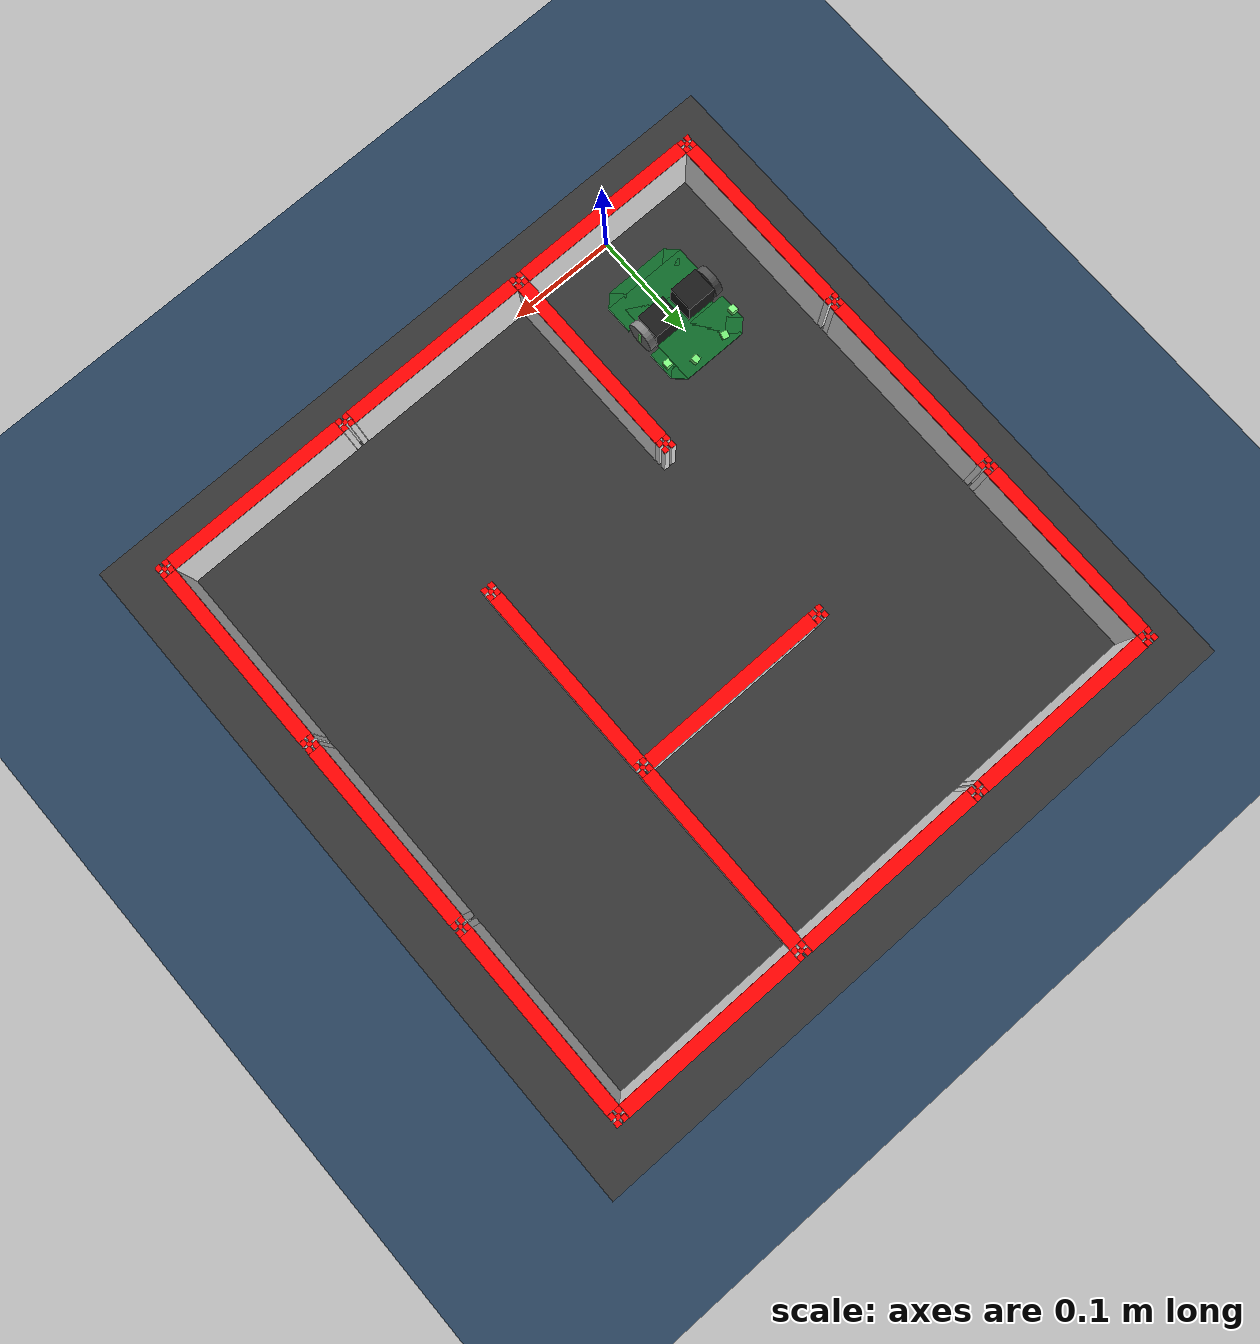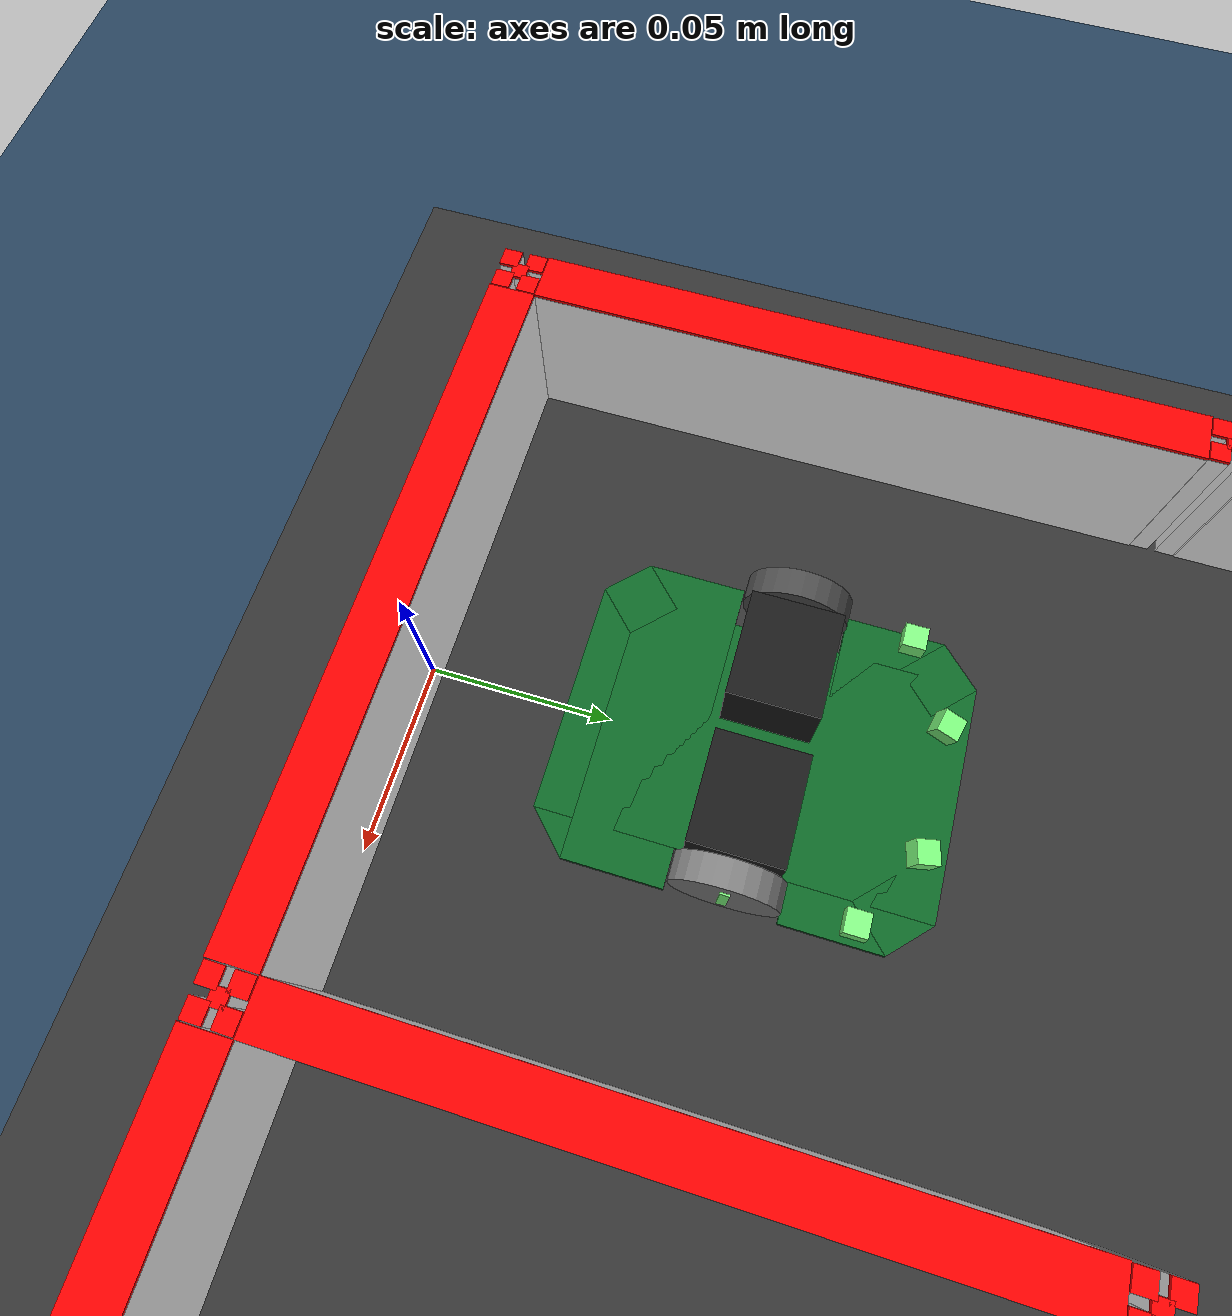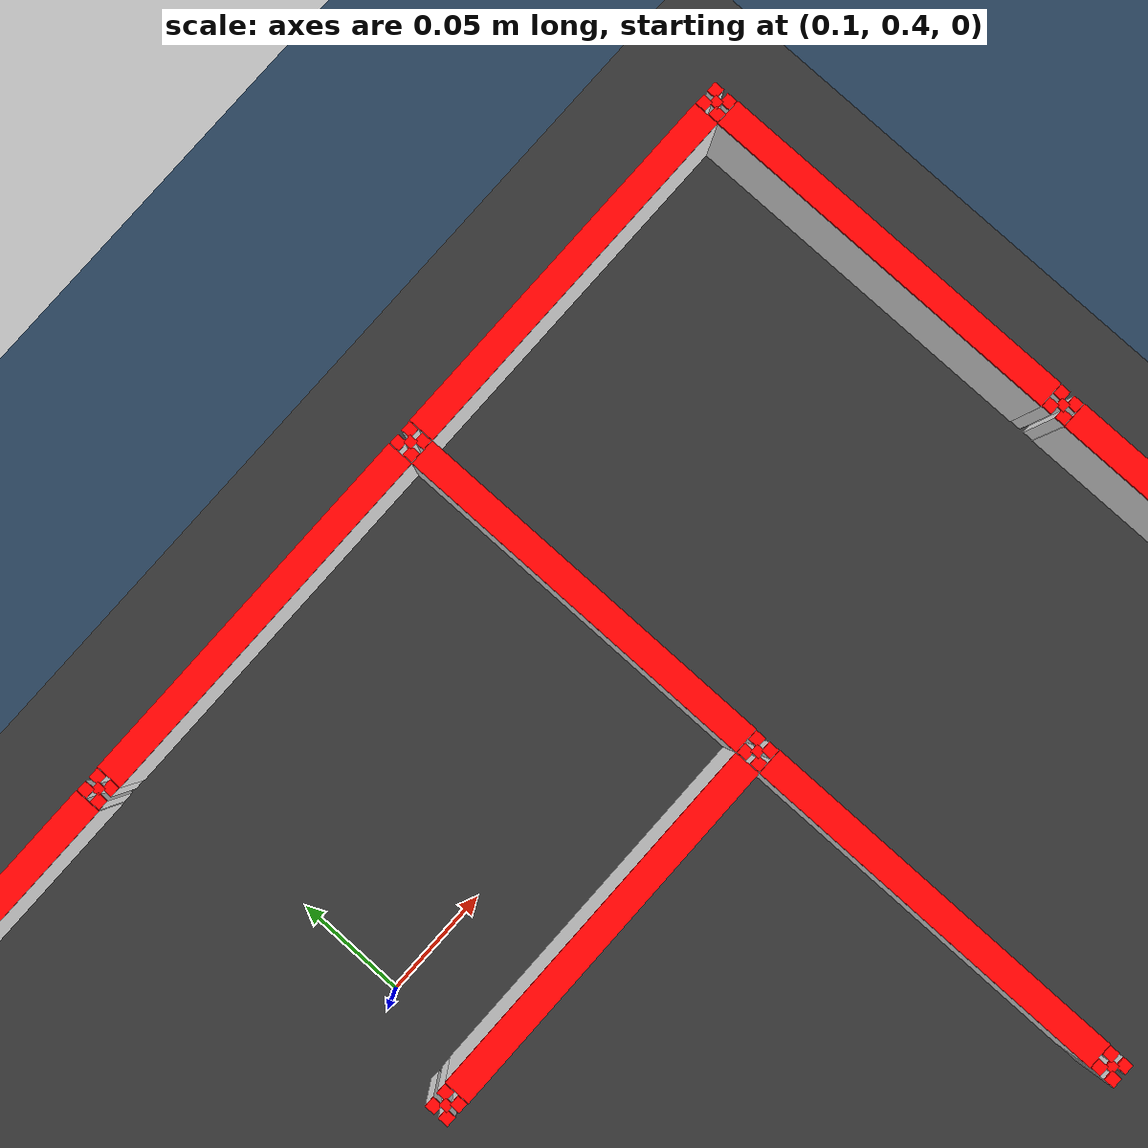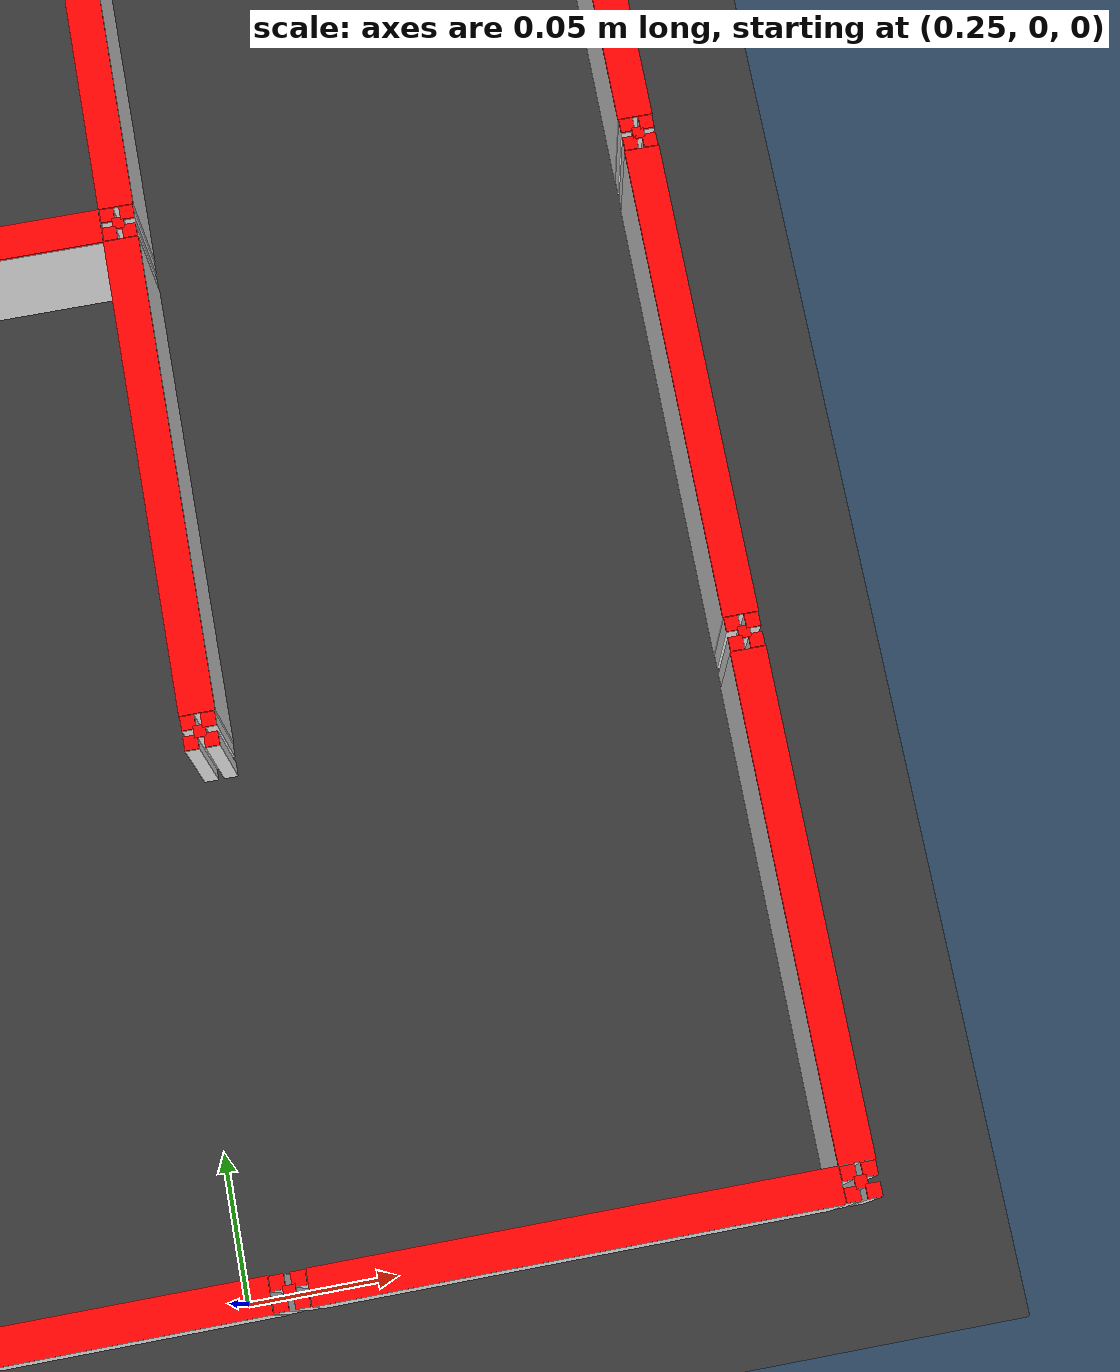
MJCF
<mujoco>
<compiler angle="degree" coordinate="local" inertiafromgeom="true" />
    <option integrator="RK4" timestep="0.001" />
    <asset>
        <texture type="skybox" builtin="gradient" rgb1="0.3 0.5 0.7" rgb2="0 0 0" width="512" height="3072"/>
        <texture type="2d" name="groundplane" builtin="checker" mark="edge" rgb1="0.2 0.3 0.4" rgb2="0.1 0.2 0.3" markrgb="0.8 0.8 0.8" width="300" height="300"/>
        <material name="groundplane" texture="groundplane" texuniform="true" texrepeat="5 5" reflectance="0.2"/>
    </asset>

    <worldbody>
        <light diffuse=".5 .5 .5" pos="0 0 10" dir="0 0 -1"/>
        <geom type="plane" size="0.7 0.7 .01" material="groundplane"/>

        <body pos="0 0.09 0.012" euler="0 0 90">
            <freejoint />
            <body name="torso">
                <geom name="mein_body1" type="box" friction="0.0 0.0 0.0" size="0.05 0.03 0.0008" rgba="0.05 0.4 0.15 1" pos="0 0 0.002" mass="4.65e-3"/>
                <geom name="mein_body_chip1" type="box" friction="0.0 0.0 0.0" size="0.00707 0.00707 0.0008" rgba="0.05 0.4 0.15 1" pos="0.04 0.03 0.002" euler="0 0 45" mass="4.65e-3"/>
                <geom name="mein_body_chip2" type="box" friction="0.0 0.0 0.0" size="0.00707 0.00707 0.0008" rgba="0.05 0.4 0.15 1" pos="0.04 -0.03 0.002" euler="0 0 45" mass="4.65e-3"/>
                <geom name="mein_body_chip3" type="box" friction="0.0 0.0 0.0" size="0.00707 0.00707 0.0008" rgba="0.05 0.4 0.15 1" pos="-0.04 0.03 0.002" euler="0 0 45" mass="4.65e-3"/>
                <geom name="mein_body_chip4" type="box" friction="0.0 0.0 0.0" size="0.00707 0.00707 0.0008" rgba="0.05 0.4 0.15 1" pos="-0.04 -0.03 0.002" euler="0 0 45" mass="4.65e-3"/>
                <geom name="mein_body4" type="box" friction="0.0 0.0 0.0" size="0.013 0.04 0.0008"  rgba="0.05 0.4 0.15 1" pos="-0.027 0 0.002" mass="4.65e-3"/>
                <geom name="mein_body5" type="box" friction="0.0 0.0 0.0" size="0.013 0.04 0.0008"  rgba="0.05 0.4 0.15 1" pos="0.027 0 0.002" mass="4.65e-3"/>
                <!--接触判定領域（この中に入ってるgeomが接触すると，センサ値としてその値を取得できる）-->
                <site name = "hit_box1" type = "box" size = "0.02 0.043 0.0008" pos="0.032 0 0.01" rgba="1 1 1 0.01"/>-->
                <site name = "hit_box2" type = "box" size = "0.02 0.043 0.0008" pos="-0.032 0 0.01" rgba="1 1 1 0.01"/>-->

            </body>

            <site name="sensor_left_front" type="box" size="0.003 0.003 0.003" pos="0.031 0.036 0.01" zaxis="1 0 0.01" rgba=".5 1 .5 1"/>
              <!-- zaxisの３つめ　0.1でちょい上向き -->
            <site name="sensor_left_side" type="box" size="0.003 0.003 0.003" pos="0.043 0.016 0.01" zaxis="0.25 1 0" rgba=".5 1 .5 1"/>
            <site name="sensor_right_front" type="box" size="0.003 0.003 0.003" pos="0.031 -0.036 0.01" zaxis="1 0 0.01" rgba=".5 1 .5 1"/>
            <site name="sensor_right_side" type="box" size="0.003 0.003 0.003" pos="0.043 -0.016 0.01" zaxis="0.25 -1 0" rgba=".5 1 .5 1"/>

             <body name="left wheel" pos="-0.0 0.036 0.0135" zaxis="0 1 0">
                <joint name="left wheel joint" type="hinge" axis="0 0 1" limited="false" damping='5.4e-5' />

                <geom type="cylinder" size="0.0135 0.0035" friction="1.0 0 0"  rgba=".3 .3 0.3 1" mass="50e-3"/>
                <site type="box" size = "0.0012 0.008 0.004" rgba=".5 1 .5 1"/>
            </body>

            <body name="right wheel" pos="-0.0 -0.036 0.0135" zaxis="0 1 0">
                <joint name="right wheel joint" type="hinge" axis="0 0 1" limited="false" damping='5.4e-5' />
                <geom type="cylinder" size="0.0135 0.0035" friction="1.0 0 0" mass="50e-3"/>
                <site type="box" size = "0.0012 0.008 0.004" rgba=".5 1 .5 1"/>
            </body>

            <body name="motorbox1" pos="0 -0.018 0.0135" >
                <geom type="box" size="0.0117 0.0135 0.0117" rgba="0.1 0.1 0.1 1" mass="50e-3"/>
            </body>

            <body name="motorbox2" pos="0 0.018 0.0135">
                <geom type="box" size="0.0117 0.0135 0.0117" rgba="0.1 0.1 0.1 1" mass="50e-3"/>
            </body>

            <!--トラッキングカメラを装着-->
            <camera name="camera_name" mode="track" pos="-0.2 0 1" euler="0 -20 -90" fovy="60"/> <!--トラッキングカメラを装着-->

        </body>

        <!--ベース板-->
        <body name="base_plate" pos="0.18 0.27 0.006">
            <geom type="box" mass="0.1" size="0.321 0.321 0.006" rgba="0.2 0.2 0.2 1" friction="0.0 0.0 0.0"/>
        </body>
        <body name="wall1" pos="0 0 0.037"  euler="0 0 0">
            <body pos="0 0 -0.0005">
                <geom type="box" mass="0.1" size="0.084 0.006 0.0245" rgba="1 1 1 1"/>
            </body>
            <body pos="0 0 0.0245">
                <geom type="box" mass="0.001" size="0.084 0.006 0.0005" rgba="1 0 0 1"/>
            </body>
        </body>
        <body name="wall2" pos="0.18 0 0.037" euler="0 0 0">
            <body pos="0 0 -0.0005">
                <geom type="box" mass="0.1" size="0.084 0.006 0.0245" rgba="1 1 1 1"/>
            </body>
            <body pos="0 0 0.0245">
                <geom type="box" mass="0.001" size="0.084 0.006 0.0005" rgba="1 0 0 1"/>
            </body>
        </body>
        <body name="wall3" pos="0.36 0 0.037" euler="0 0 0">
            <body pos="0 0 -0.0005">
                <geom type="box" mass="0.1" size="0.084 0.006 0.0245" rgba="1 1 1 1"/>
            </body>
            <body pos="0 0 0.0245">
                <geom type="box" mass="0.001" size="0.084 0.006 0.0005" rgba="1 0 0 1"/>
            </body>
        </body>
        <body name="wall4" pos="0.45 0.09 0.037"  euler="0 0 90">
            <body pos="0 0 -0.0005">
                <geom type="box" mass="0.1" size="0.084 0.006 0.0245" rgba="1 1 1 1"/>
            </body>
            <body pos="0 0 0.0245">
                <geom type="box" mass="0.001" size="0.084 0.006 0.0005" rgba="1 0 0 1"/>
            </body>
        </body>
        <body name="wall5" pos="0.45 0.27 0.037" euler="0 0 90">
            <body pos="0 0 -0.0005">
                <geom type="box" mass="0.1" size="0.084 0.006 0.0245" rgba="1 1 1 1"/>
            </body>
            <body pos="0 0 0.0245">
                <geom type="box" mass="0.001" size="0.084 0.006 0.0005" rgba="1 0 0 1"/>
            </body>
        </body>
        <body name="wall6" pos="0.45 0.45 0.037" euler="0 0 90">
            <body pos="0 0 -0.0005">
                <geom type="box" mass="0.1" size="0.084 0.006 0.0245" rgba="1 1 1 1"/>
            </body>
            <body pos="0 0 0.0245">
                <geom type="box" mass="0.001" size="0.084 0.006 0.0005" rgba="1 0 0 1"/>
            </body>
        </body>
        <body name="wall7" pos="-0.090 0.09 0.037"  euler="0 0 90">
            <body pos="0 0 -0.0005">
                <geom type="box" mass="0.1" size="0.084 0.006 0.0245" rgba="1 1 1 1"/>
            </body>
            <body pos="0 0 0.0245">
                <geom type="box" mass="0.001" size="0.084 0.006 0.0005" rgba="1 0 0 1"/>
            </body>
        </body>
        <body name="wall8" pos="-0.090 0.27 0.037" euler="0 0 90">
            <body pos="0 0 -0.0005">
                <geom type="box" mass="0.1" size="0.084 0.006 0.0245" rgba="1 1 1 1"/>
            </body>
            <body pos="0 0 0.0245">
                <geom type="box" mass="0.001" size="0.084 0.006 0.0005" rgba="1 0 0 1"/>
            </body>
        </body>
        <body name="wall9" pos="-0.090 0.45 0.037" euler="0 0 90">
            <body pos="0 0 -0.0005">
                <geom type="box" mass="0.1" size="0.084 0.006 0.0245" rgba="1 1 1 1"/>
            </body>
            <body pos="0 0 0.0245">
                <geom type="box" mass="0.001" size="0.084 0.006 0.0005" rgba="1 0 0 1"/>
            </body>
        </body>
        <body name="wall10" pos="0 0.54 0.037"  euler="0 0 0">
            <body pos="0 0 -0.0005">
                <geom type="box" mass="0.1" size="0.084 0.006 0.0245" rgba="1 1 1 1"/>
            </body>
            <body pos="0 0 0.0245">
                <geom type="box" mass="0.001" size="0.084 0.006 0.0005" rgba="1 0 0 1"/>
            </body>
        </body>
        <body name="wall11" pos="0.18 0.54 0.037" euler="0 0 0">
            <body pos="0 0 -0.0005">
                <geom type="box" mass="0.1" size="0.084 0.006 0.0245" rgba="1 1 1 1"/>
            </body>
            <body pos="0 0 0.0245">
                <geom type="box" mass="0.001" size="0.084 0.006 0.0005" rgba="1 0 0 1"/>
            </body>
        </body>
        <body name="wall12" pos="0.36 0.54 0.037" euler="0 0 0">
            <body pos="0 0 -0.0005">
                <geom type="box" mass="0.1" size="0.084 0.006 0.0245" rgba="1 1 1 1"/>
            </body>
            <body pos="0 0 0.0245">
                <geom type="box" mass="0.001" size="0.084 0.006 0.0005" rgba="1 0 0 1"/>
            </body>
        </body>

        <body name="wall13" pos="0.09 0.09 0.037" euler="0 0 90">
            <body pos="0 0 -0.0005">
                <geom type="box" mass="0.1" size="0.084 0.006 0.0245" rgba="1 1 1 1"/>
            </body>
            <body pos="0 0 0.0245">
                <geom type="box" mass="0.001" size="0.084 0.006 0.0005" rgba="1 0 0 1"/>
            </body>
        </body>

        <body name="wall14" pos="0.27 0.45 0.037" euler="0 0 90">
            <body pos="0 0 -0.0005">
                <geom type="box" mass="0.1" size="0.084 0.006 0.0245" rgba="1 1 1 1"/>
            </body>
            <body pos="0 0 0.0245">
                <geom type="box" mass="0.001" size="0.084 0.006 0.0005" rgba="1 0 0 1"/>
            </body>
        </body>

        <body name="wall15" pos="0.18 0.36 0.037" euler="0 0 0">
            <body pos="0 0 -0.0005">
                <geom type="box" mass="0.1" size="0.084 0.006 0.0245" rgba="1 1 1 1"/>
            </body>
            <body pos="0 0 0.0245">
                <geom type="box" mass="0.001" size="0.084 0.006 0.0005" rgba="1 0 0 1"/>
            </body>
        </body>

        <body name="wall16" pos="0.27 0.27 0.037" euler="0 0 90">
            <body pos="0 0 -0.0005">
                <geom type="box" mass="0.1" size="0.084 0.006 0.0245" rgba="1 1 1 1"/>
            </body>
            <body pos="0 0 0.0245">
                <geom type="box" mass="0.001" size="0.084 0.006 0.0005" rgba="1 0 0 1"/>
            </body>
        </body>

        <body pos="-0.09 0 0.037">
            <body pos="0.003375 0.003375 -0.0005">
                <geom type="box" mass="0.01" size="0.002375 0.002375 0.0245" rgba="1 1 1 1"/>
            </body>
            <body pos="0.003375 -0.003375 -0.0005">
                <geom type="box" mass="0.01" size="0.002375 0.002375 0.0245" rgba="1 1 1 1"/>
            </body>
            <body pos="-0.003375 0.003375 -0.0005">
                <geom type="box" mass="0.01" size="0.002375 0.002375 0.0245" rgba="1 1 1 1"/>
            </body>
            <body pos="-0.003375 -0.003375 -0.0005">
                <geom type="box" mass="0.01" size="0.002375 0.002375 0.0245" rgba="1 1 1 1"/>
            </body>
            <body pos="0 0 -0.0005">
                <geom type="box" mass="0.01" size="0.002 0.002 0.0245" rgba="1 1 1 1"/>
            </body>
            <!--柱上赤蓋-->
            <body pos="0.003375 0.003375 0.0245">
                <geom type="box" mass="0.01" size="0.002375 0.002375 0.0005" rgba="1 0 0 1"/>
            </body>
            <body pos="0.003375 -0.003375 0.0245">
                <geom type="box" mass="0.01" size="0.002375 0.002375 0.0005" rgba="1 0 0 1"/>
            </body>
            <body pos="-0.003375 0.003375 0.0245">
                <geom type="box" mass="0.01" size="0.002375 0.002375 0.0005" rgba="1 0 0 1"/>
            </body>
            <body pos="-0.003375 -0.003375 0.0245">
                <geom type="box" mass="0.01" size="0.002375 0.002375 0.0005" rgba="1 0 0 1"/>
            </body>
            <body pos="0 0 0.0245">
                <geom type="box" mass="0.01" size="0.002 0.002 0.0005" rgba="1 0 0 1"/>
            </body>
        </body>
        <body pos="0.09 0 0.037">
            <body pos="0.003375 0.003375 -0.0005">
                <geom type="box" mass="0.01" size="0.002375 0.002375 0.0245" rgba="1 1 1 1"/>
            </body>
            <body pos="0.003375 -0.003375 -0.0005">
                <geom type="box" mass="0.01" size="0.002375 0.002375 0.0245" rgba="1 1 1 1"/>
            </body>
            <body pos="-0.003375 0.003375 -0.0005">
                <geom type="box" mass="0.01" size="0.002375 0.002375 0.0245" rgba="1 1 1 1"/>
            </body>
            <body pos="-0.003375 -0.003375 -0.0005">
                <geom type="box" mass="0.01" size="0.002375 0.002375 0.0245" rgba="1 1 1 1"/>
            </body>
            <body pos="0 0 -0.0005">
                <geom type="box" mass="0.01" size="0.002 0.002 0.0245" rgba="1 1 1 1"/>
            </body>
            <!--柱上赤蓋-->
            <body pos="0.003375 0.003375 0.0245">
                <geom type="box" mass="0.01" size="0.002375 0.002375 0.0005" rgba="1 0 0 1"/>
            </body>
            <body pos="0.003375 -0.003375 0.0245">
                <geom type="box" mass="0.01" size="0.002375 0.002375 0.0005" rgba="1 0 0 1"/>
            </body>
            <body pos="-0.003375 0.003375 0.0245">
                <geom type="box" mass="0.01" size="0.002375 0.002375 0.0005" rgba="1 0 0 1"/>
            </body>
            <body pos="-0.003375 -0.003375 0.0245">
                <geom type="box" mass="0.01" size="0.002375 0.002375 0.0005" rgba="1 0 0 1"/>
            </body>
            <body pos="0 0 0.0245">
                <geom type="box" mass="0.01" size="0.002 0.002 0.0005" rgba="1 0 0 1"/>
            </body>
        </body>
        <body pos="0.27 0 0.037">
            <body pos="0.003375 0.003375 -0.0005">
                <geom type="box" mass="0.01" size="0.002375 0.002375 0.0245" rgba="1 1 1 1"/>
            </body>
            <body pos="0.003375 -0.003375 -0.0005">
                <geom type="box" mass="0.01" size="0.002375 0.002375 0.0245" rgba="1 1 1 1"/>
            </body>
            <body pos="-0.003375 0.003375 -0.0005">
                <geom type="box" mass="0.01" size="0.002375 0.002375 0.0245" rgba="1 1 1 1"/>
            </body>
            <body pos="-0.003375 -0.003375 -0.0005">
                <geom type="box" mass="0.01" size="0.002375 0.002375 0.0245" rgba="1 1 1 1"/>
            </body>
            <body pos="0 0 -0.0005">
                <geom type="box" mass="0.01" size="0.002 0.002 0.0245" rgba="1 1 1 1"/>
            </body>
            <!--柱上赤蓋-->
            <body pos="0.003375 0.003375 0.0245">
                <geom type="box" mass="0.01" size="0.002375 0.002375 0.0005" rgba="1 0 0 1"/>
            </body>
            <body pos="0.003375 -0.003375 0.0245">
                <geom type="box" mass="0.01" size="0.002375 0.002375 0.0005" rgba="1 0 0 1"/>
            </body>
            <body pos="-0.003375 0.003375 0.0245">
                <geom type="box" mass="0.01" size="0.002375 0.002375 0.0005" rgba="1 0 0 1"/>
            </body>
            <body pos="-0.003375 -0.003375 0.0245">
                <geom type="box" mass="0.01" size="0.002375 0.002375 0.0005" rgba="1 0 0 1"/>
            </body>
            <body pos="0 0 0.0245">
                <geom type="box" mass="0.01" size="0.002 0.002 0.0005" rgba="1 0 0 1"/>
            </body>
        </body>
        <body pos="0.45 0 0.037">
            <body pos="0.003375 0.003375 -0.0005">
                <geom type="box" mass="0.01" size="0.002375 0.002375 0.0245" rgba="1 1 1 1"/>
            </body>
            <body pos="0.003375 -0.003375 -0.0005">
                <geom type="box" mass="0.01" size="0.002375 0.002375 0.0245" rgba="1 1 1 1"/>
            </body>
            <body pos="-0.003375 0.003375 -0.0005">
                <geom type="box" mass="0.01" size="0.002375 0.002375 0.0245" rgba="1 1 1 1"/>
            </body>
            <body pos="-0.003375 -0.003375 -0.0005">
                <geom type="box" mass="0.01" size="0.002375 0.002375 0.0245" rgba="1 1 1 1"/>
            </body>
            <body pos="0 0 -0.0005">
                <geom type="box" mass="0.01" size="0.002 0.002 0.0245" rgba="1 1 1 1"/>
            </body>
            <!--柱上赤蓋-->
            <body pos="0.003375 0.003375 0.0245">
                <geom type="box" mass="0.01" size="0.002375 0.002375 0.0005" rgba="1 0 0 1"/>
            </body>
            <body pos="0.003375 -0.003375 0.0245">
                <geom type="box" mass="0.01" size="0.002375 0.002375 0.0005" rgba="1 0 0 1"/>
            </body>
            <body pos="-0.003375 0.003375 0.0245">
                <geom type="box" mass="0.01" size="0.002375 0.002375 0.0005" rgba="1 0 0 1"/>
            </body>
            <body pos="-0.003375 -0.003375 0.0245">
                <geom type="box" mass="0.01" size="0.002375 0.002375 0.0005" rgba="1 0 0 1"/>
            </body>
            <body pos="0 0 0.0245">
                <geom type="box" mass="0.01" size="0.002 0.002 0.0005" rgba="1 0 0 1"/>
            </body>
        </body>

        <body pos="-0.09 0.18 0.037">
            <body pos="0.003375 0.003375 -0.0005">
                <geom type="box" mass="0.01" size="0.002375 0.002375 0.0245" rgba="1 1 1 1"/>
            </body>
            <body pos="0.003375 -0.003375 -0.0005">
                <geom type="box" mass="0.01" size="0.002375 0.002375 0.0245" rgba="1 1 1 1"/>
            </body>
            <body pos="-0.003375 0.003375 -0.0005">
                <geom type="box" mass="0.01" size="0.002375 0.002375 0.0245" rgba="1 1 1 1"/>
            </body>
            <body pos="-0.003375 -0.003375 -0.0005">
                <geom type="box" mass="0.01" size="0.002375 0.002375 0.0245" rgba="1 1 1 1"/>
            </body>
            <body pos="0 0 -0.0005">
                <geom type="box" mass="0.01" size="0.002 0.002 0.0245" rgba="1 1 1 1"/>
            </body>
            <!--柱上赤蓋-->
            <body pos="0.003375 0.003375 0.0245">
                <geom type="box" mass="0.01" size="0.002375 0.002375 0.0005" rgba="1 0 0 1"/>
            </body>
            <body pos="0.003375 -0.003375 0.0245">
                <geom type="box" mass="0.01" size="0.002375 0.002375 0.0005" rgba="1 0 0 1"/>
            </body>
            <body pos="-0.003375 0.003375 0.0245">
                <geom type="box" mass="0.01" size="0.002375 0.002375 0.0005" rgba="1 0 0 1"/>
            </body>
            <body pos="-0.003375 -0.003375 0.0245">
                <geom type="box" mass="0.01" size="0.002375 0.002375 0.0005" rgba="1 0 0 1"/>
            </body>
            <body pos="0 0 0.0245">
                <geom type="box" mass="0.01" size="0.002 0.002 0.0005" rgba="1 0 0 1"/>
            </body>
        </body>
        <body pos="0.09 0.18 0.037">
            <body pos="0.003375 0.003375 -0.0005">
                <geom type="box" mass="0.01" size="0.002375 0.002375 0.0245" rgba="1 1 1 1"/>
            </body>
            <body pos="0.003375 -0.003375 -0.0005">
                <geom type="box" mass="0.01" size="0.002375 0.002375 0.0245" rgba="1 1 1 1"/>
            </body>
            <body pos="-0.003375 0.003375 -0.0005">
                <geom type="box" mass="0.01" size="0.002375 0.002375 0.0245" rgba="1 1 1 1"/>
            </body>
            <body pos="-0.003375 -0.003375 -0.0005">
                <geom type="box" mass="0.01" size="0.002375 0.002375 0.0245" rgba="1 1 1 1"/>
            </body>
            <body pos="0 0 -0.0005">
                <geom type="box" mass="0.01" size="0.002 0.002 0.0245" rgba="1 1 1 1"/>
            </body>
            <!--柱上赤蓋-->
            <body pos="0.003375 0.003375 0.0245">
                <geom type="box" mass="0.01" size="0.002375 0.002375 0.0005" rgba="1 0 0 1"/>
            </body>
            <body pos="0.003375 -0.003375 0.0245">
                <geom type="box" mass="0.01" size="0.002375 0.002375 0.0005" rgba="1 0 0 1"/>
            </body>
            <body pos="-0.003375 0.003375 0.0245">
                <geom type="box" mass="0.01" size="0.002375 0.002375 0.0005" rgba="1 0 0 1"/>
            </body>
            <body pos="-0.003375 -0.003375 0.0245">
                <geom type="box" mass="0.01" size="0.002375 0.002375 0.0005" rgba="1 0 0 1"/>
            </body>
            <body pos="0 0 0.0245">
                <geom type="box" mass="0.01" size="0.002 0.002 0.0005" rgba="1 0 0 1"/>
            </body>
        </body>
        <body pos="0.27 0.18 0.037">
            <body pos="0.003375 0.003375 -0.0005">
                <geom type="box" mass="0.01" size="0.002375 0.002375 0.0245" rgba="1 1 1 1"/>
            </body>
            <body pos="0.003375 -0.003375 -0.0005">
                <geom type="box" mass="0.01" size="0.002375 0.002375 0.0245" rgba="1 1 1 1"/>
            </body>
            <body pos="-0.003375 0.003375 -0.0005">
                <geom type="box" mass="0.01" size="0.002375 0.002375 0.0245" rgba="1 1 1 1"/>
            </body>
            <body pos="-0.003375 -0.003375 -0.0005">
                <geom type="box" mass="0.01" size="0.002375 0.002375 0.0245" rgba="1 1 1 1"/>
            </body>
            <body pos="0 0 -0.0005">
                <geom type="box" mass="0.01" size="0.002 0.002 0.0245" rgba="1 1 1 1"/>
            </body>
            <!--柱上赤蓋-->
            <body pos="0.003375 0.003375 0.0245">
                <geom type="box" mass="0.01" size="0.002375 0.002375 0.0005" rgba="1 0 0 1"/>
            </body>
            <body pos="0.003375 -0.003375 0.0245">
                <geom type="box" mass="0.01" size="0.002375 0.002375 0.0005" rgba="1 0 0 1"/>
            </body>
            <body pos="-0.003375 0.003375 0.0245">
                <geom type="box" mass="0.01" size="0.002375 0.002375 0.0005" rgba="1 0 0 1"/>
            </body>
            <body pos="-0.003375 -0.003375 0.0245">
                <geom type="box" mass="0.01" size="0.002375 0.002375 0.0005" rgba="1 0 0 1"/>
            </body>
            <body pos="0 0 0.0245">
                <geom type="box" mass="0.01" size="0.002 0.002 0.0005" rgba="1 0 0 1"/>
            </body>
        </body>
        <body pos="0.45 0.18 0.037">
            <body pos="0.003375 0.003375 -0.0005">
                <geom type="box" mass="0.01" size="0.002375 0.002375 0.0245" rgba="1 1 1 1"/>
            </body>
            <body pos="0.003375 -0.003375 -0.0005">
                <geom type="box" mass="0.01" size="0.002375 0.002375 0.0245" rgba="1 1 1 1"/>
            </body>
            <body pos="-0.003375 0.003375 -0.0005">
                <geom type="box" mass="0.01" size="0.002375 0.002375 0.0245" rgba="1 1 1 1"/>
            </body>
            <body pos="-0.003375 -0.003375 -0.0005">
                <geom type="box" mass="0.01" size="0.002375 0.002375 0.0245" rgba="1 1 1 1"/>
            </body>
            <body pos="0 0 -0.0005">
                <geom type="box" mass="0.01" size="0.002 0.002 0.0245" rgba="1 1 1 1"/>
            </body>
            <!--柱上赤蓋-->
            <body pos="0.003375 0.003375 0.0245">
                <geom type="box" mass="0.01" size="0.002375 0.002375 0.0005" rgba="1 0 0 1"/>
            </body>
            <body pos="0.003375 -0.003375 0.0245">
                <geom type="box" mass="0.01" size="0.002375 0.002375 0.0005" rgba="1 0 0 1"/>
            </body>
            <body pos="-0.003375 0.003375 0.0245">
                <geom type="box" mass="0.01" size="0.002375 0.002375 0.0005" rgba="1 0 0 1"/>
            </body>
            <body pos="-0.003375 -0.003375 0.0245">
                <geom type="box" mass="0.01" size="0.002375 0.002375 0.0005" rgba="1 0 0 1"/>
            </body>
            <body pos="0 0 0.0245">
                <geom type="box" mass="0.01" size="0.002 0.002 0.0005" rgba="1 0 0 1"/>
            </body>
        </body>

        <body pos="-0.09 0.36 0.037">
            <body pos="0.003375 0.003375 -0.0005">
                <geom type="box" mass="0.01" size="0.002375 0.002375 0.0245" rgba="1 1 1 1"/>
            </body>
            <body pos="0.003375 -0.003375 -0.0005">
                <geom type="box" mass="0.01" size="0.002375 0.002375 0.0245" rgba="1 1 1 1"/>
            </body>
            <body pos="-0.003375 0.003375 -0.0005">
                <geom type="box" mass="0.01" size="0.002375 0.002375 0.0245" rgba="1 1 1 1"/>
            </body>
            <body pos="-0.003375 -0.003375 -0.0005">
                <geom type="box" mass="0.01" size="0.002375 0.002375 0.0245" rgba="1 1 1 1"/>
            </body>
            <body pos="0 0 -0.0005">
                <geom type="box" mass="0.01" size="0.002 0.002 0.0245" rgba="1 1 1 1"/>
            </body>
            <!--柱上赤蓋-->
            <body pos="0.003375 0.003375 0.0245">
                <geom type="box" mass="0.01" size="0.002375 0.002375 0.0005" rgba="1 0 0 1"/>
            </body>
            <body pos="0.003375 -0.003375 0.0245">
                <geom type="box" mass="0.01" size="0.002375 0.002375 0.0005" rgba="1 0 0 1"/>
            </body>
            <body pos="-0.003375 0.003375 0.0245">
                <geom type="box" mass="0.01" size="0.002375 0.002375 0.0005" rgba="1 0 0 1"/>
            </body>
            <body pos="-0.003375 -0.003375 0.0245">
                <geom type="box" mass="0.01" size="0.002375 0.002375 0.0005" rgba="1 0 0 1"/>
            </body>
            <body pos="0 0 0.0245">
                <geom type="box" mass="0.01" size="0.002 0.002 0.0005" rgba="1 0 0 1"/>
            </body>
        </body>
        <body pos="0.09 0.36 0.037">
            <body pos="0.003375 0.003375 -0.0005">
                <geom type="box" mass="0.01" size="0.002375 0.002375 0.0245" rgba="1 1 1 1"/>
            </body>
            <body pos="0.003375 -0.003375 -0.0005">
                <geom type="box" mass="0.01" size="0.002375 0.002375 0.0245" rgba="1 1 1 1"/>
            </body>
            <body pos="-0.003375 0.003375 -0.0005">
                <geom type="box" mass="0.01" size="0.002375 0.002375 0.0245" rgba="1 1 1 1"/>
            </body>
            <body pos="-0.003375 -0.003375 -0.0005">
                <geom type="box" mass="0.01" size="0.002375 0.002375 0.0245" rgba="1 1 1 1"/>
            </body>
            <body pos="0 0 -0.0005">
                <geom type="box" mass="0.01" size="0.002 0.002 0.0245" rgba="1 1 1 1"/>
            </body>
            <!--柱上赤蓋-->
            <body pos="0.003375 0.003375 0.0245">
                <geom type="box" mass="0.01" size="0.002375 0.002375 0.0005" rgba="1 0 0 1"/>
            </body>
            <body pos="0.003375 -0.003375 0.0245">
                <geom type="box" mass="0.01" size="0.002375 0.002375 0.0005" rgba="1 0 0 1"/>
            </body>
            <body pos="-0.003375 0.003375 0.0245">
                <geom type="box" mass="0.01" size="0.002375 0.002375 0.0005" rgba="1 0 0 1"/>
            </body>
            <body pos="-0.003375 -0.003375 0.0245">
                <geom type="box" mass="0.01" size="0.002375 0.002375 0.0005" rgba="1 0 0 1"/>
            </body>
            <body pos="0 0 0.0245">
                <geom type="box" mass="0.01" size="0.002 0.002 0.0005" rgba="1 0 0 1"/>
            </body>
        </body>
        <body pos="0.27 0.36 0.037">
            <body pos="0.003375 0.003375 -0.0005">
                <geom type="box" mass="0.01" size="0.002375 0.002375 0.0245" rgba="1 1 1 1"/>
            </body>
            <body pos="0.003375 -0.003375 -0.0005">
                <geom type="box" mass="0.01" size="0.002375 0.002375 0.0245" rgba="1 1 1 1"/>
            </body>
            <body pos="-0.003375 0.003375 -0.0005">
                <geom type="box" mass="0.01" size="0.002375 0.002375 0.0245" rgba="1 1 1 1"/>
            </body>
            <body pos="-0.003375 -0.003375 -0.0005">
                <geom type="box" mass="0.01" size="0.002375 0.002375 0.0245" rgba="1 1 1 1"/>
            </body>
            <body pos="0 0 -0.0005">
                <geom type="box" mass="0.01" size="0.002 0.002 0.0245" rgba="1 1 1 1"/>
            </body>
            <!--柱上赤蓋-->
            <body pos="0.003375 0.003375 0.0245">
                <geom type="box" mass="0.01" size="0.002375 0.002375 0.0005" rgba="1 0 0 1"/>
            </body>
            <body pos="0.003375 -0.003375 0.0245">
                <geom type="box" mass="0.01" size="0.002375 0.002375 0.0005" rgba="1 0 0 1"/>
            </body>
            <body pos="-0.003375 0.003375 0.0245">
                <geom type="box" mass="0.01" size="0.002375 0.002375 0.0005" rgba="1 0 0 1"/>
            </body>
            <body pos="-0.003375 -0.003375 0.0245">
                <geom type="box" mass="0.01" size="0.002375 0.002375 0.0005" rgba="1 0 0 1"/>
            </body>
            <body pos="0 0 0.0245">
                <geom type="box" mass="0.01" size="0.002 0.002 0.0005" rgba="1 0 0 1"/>
            </body>
        </body>
        <body pos="0.45 0.36 0.037">
            <body pos="0.003375 0.003375 -0.0005">
                <geom type="box" mass="0.01" size="0.002375 0.002375 0.0245" rgba="1 1 1 1"/>
            </body>
            <body pos="0.003375 -0.003375 -0.0005">
                <geom type="box" mass="0.01" size="0.002375 0.002375 0.0245" rgba="1 1 1 1"/>
            </body>
            <body pos="-0.003375 0.003375 -0.0005">
                <geom type="box" mass="0.01" size="0.002375 0.002375 0.0245" rgba="1 1 1 1"/>
            </body>
            <body pos="-0.003375 -0.003375 -0.0005">
                <geom type="box" mass="0.01" size="0.002375 0.002375 0.0245" rgba="1 1 1 1"/>
            </body>
            <body pos="0 0 -0.0005">
                <geom type="box" mass="0.01" size="0.002 0.002 0.0245" rgba="1 1 1 1"/>
            </body>
            <!--柱上赤蓋-->
            <body pos="0.003375 0.003375 0.0245">
                <geom type="box" mass="0.01" size="0.002375 0.002375 0.0005" rgba="1 0 0 1"/>
            </body>
            <body pos="0.003375 -0.003375 0.0245">
                <geom type="box" mass="0.01" size="0.002375 0.002375 0.0005" rgba="1 0 0 1"/>
            </body>
            <body pos="-0.003375 0.003375 0.0245">
                <geom type="box" mass="0.01" size="0.002375 0.002375 0.0005" rgba="1 0 0 1"/>
            </body>
            <body pos="-0.003375 -0.003375 0.0245">
                <geom type="box" mass="0.01" size="0.002375 0.002375 0.0005" rgba="1 0 0 1"/>
            </body>
            <body pos="0 0 0.0245">
                <geom type="box" mass="0.01" size="0.002 0.002 0.0005" rgba="1 0 0 1"/>
            </body>
        </body>

        <body pos="-0.09 0.54 0.037">
            <body pos="0.003375 0.003375 -0.0005">
                <geom type="box" mass="0.01" size="0.002375 0.002375 0.0245" rgba="1 1 1 1"/>
            </body>
            <body pos="0.003375 -0.003375 -0.0005">
                <geom type="box" mass="0.01" size="0.002375 0.002375 0.0245" rgba="1 1 1 1"/>
            </body>
            <body pos="-0.003375 0.003375 -0.0005">
                <geom type="box" mass="0.01" size="0.002375 0.002375 0.0245" rgba="1 1 1 1"/>
            </body>
            <body pos="-0.003375 -0.003375 -0.0005">
                <geom type="box" mass="0.01" size="0.002375 0.002375 0.0245" rgba="1 1 1 1"/>
            </body>
            <body pos="0 0 -0.0005">
                <geom type="box" mass="0.01" size="0.002 0.002 0.0245" rgba="1 1 1 1"/>
            </body>
            <!--柱上赤蓋-->
            <body pos="0.003375 0.003375 0.0245">
                <geom type="box" mass="0.01" size="0.002375 0.002375 0.0005" rgba="1 0 0 1"/>
            </body>
            <body pos="0.003375 -0.003375 0.0245">
                <geom type="box" mass="0.01" size="0.002375 0.002375 0.0005" rgba="1 0 0 1"/>
            </body>
            <body pos="-0.003375 0.003375 0.0245">
                <geom type="box" mass="0.01" size="0.002375 0.002375 0.0005" rgba="1 0 0 1"/>
            </body>
            <body pos="-0.003375 -0.003375 0.0245">
                <geom type="box" mass="0.01" size="0.002375 0.002375 0.0005" rgba="1 0 0 1"/>
            </body>
            <body pos="0 0 0.0245">
                <geom type="box" mass="0.01" size="0.002 0.002 0.0005" rgba="1 0 0 1"/>
            </body>
        </body>
        <body pos="0.09 0.54 0.037">
            <body pos="0.003375 0.003375 -0.0005">
                <geom type="box" mass="0.01" size="0.002375 0.002375 0.0245" rgba="1 1 1 1"/>
            </body>
            <body pos="0.003375 -0.003375 -0.0005">
                <geom type="box" mass="0.01" size="0.002375 0.002375 0.0245" rgba="1 1 1 1"/>
            </body>
            <body pos="-0.003375 0.003375 -0.0005">
                <geom type="box" mass="0.01" size="0.002375 0.002375 0.0245" rgba="1 1 1 1"/>
            </body>
            <body pos="-0.003375 -0.003375 -0.0005">
                <geom type="box" mass="0.01" size="0.002375 0.002375 0.0245" rgba="1 1 1 1"/>
            </body>
            <body pos="0 0 -0.0005">
                <geom type="box" mass="0.01" size="0.002 0.002 0.0245" rgba="1 1 1 1"/>
            </body>
            <!--柱上赤蓋-->
            <body pos="0.003375 0.003375 0.0245">
                <geom type="box" mass="0.01" size="0.002375 0.002375 0.0005" rgba="1 0 0 1"/>
            </body>
            <body pos="0.003375 -0.003375 0.0245">
                <geom type="box" mass="0.01" size="0.002375 0.002375 0.0005" rgba="1 0 0 1"/>
            </body>
            <body pos="-0.003375 0.003375 0.0245">
                <geom type="box" mass="0.01" size="0.002375 0.002375 0.0005" rgba="1 0 0 1"/>
            </body>
            <body pos="-0.003375 -0.003375 0.0245">
                <geom type="box" mass="0.01" size="0.002375 0.002375 0.0005" rgba="1 0 0 1"/>
            </body>
            <body pos="0 0 0.0245">
                <geom type="box" mass="0.01" size="0.002 0.002 0.0005" rgba="1 0 0 1"/>
            </body>
        </body>
        <body pos="0.27 0.54 0.037">
            <body pos="0.003375 0.003375 -0.0005">
                <geom type="box" mass="0.01" size="0.002375 0.002375 0.0245" rgba="1 1 1 1"/>
            </body>
            <body pos="0.003375 -0.003375 -0.0005">
                <geom type="box" mass="0.01" size="0.002375 0.002375 0.0245" rgba="1 1 1 1"/>
            </body>
            <body pos="-0.003375 0.003375 -0.0005">
                <geom type="box" mass="0.01" size="0.002375 0.002375 0.0245" rgba="1 1 1 1"/>
            </body>
            <body pos="-0.003375 -0.003375 -0.0005">
                <geom type="box" mass="0.01" size="0.002375 0.002375 0.0245" rgba="1 1 1 1"/>
            </body>
            <body pos="0 0 -0.0005">
                <geom type="box" mass="0.01" size="0.002 0.002 0.0245" rgba="1 1 1 1"/>
            </body>
            <!--柱上赤蓋-->
            <body pos="0.003375 0.003375 0.0245">
                <geom type="box" mass="0.01" size="0.002375 0.002375 0.0005" rgba="1 0 0 1"/>
            </body>
            <body pos="0.003375 -0.003375 0.0245">
                <geom type="box" mass="0.01" size="0.002375 0.002375 0.0005" rgba="1 0 0 1"/>
            </body>
            <body pos="-0.003375 0.003375 0.0245">
                <geom type="box" mass="0.01" size="0.002375 0.002375 0.0005" rgba="1 0 0 1"/>
            </body>
            <body pos="-0.003375 -0.003375 0.0245">
                <geom type="box" mass="0.01" size="0.002375 0.002375 0.0005" rgba="1 0 0 1"/>
            </body>
            <body pos="0 0 0.0245">
                <geom type="box" mass="0.01" size="0.002 0.002 0.0005" rgba="1 0 0 1"/>
            </body>
        </body>
        <body pos="0.45 0.54 0.037">
            <body pos="0.003375 0.003375 -0.0005">
                <geom type="box" mass="0.01" size="0.002375 0.002375 0.0245" rgba="1 1 1 1"/>
            </body>
            <body pos="0.003375 -0.003375 -0.0005">
                <geom type="box" mass="0.01" size="0.002375 0.002375 0.0245" rgba="1 1 1 1"/>
            </body>
            <body pos="-0.003375 0.003375 -0.0005">
                <geom type="box" mass="0.01" size="0.002375 0.002375 0.0245" rgba="1 1 1 1"/>
            </body>
            <body pos="-0.003375 -0.003375 -0.0005">
                <geom type="box" mass="0.01" size="0.002375 0.002375 0.0245" rgba="1 1 1 1"/>
            </body>
            <body pos="0 0 -0.0005">
                <geom type="box" mass="0.01" size="0.002 0.002 0.0245" rgba="1 1 1 1"/>
            </body>
            <!--柱上赤蓋-->
            <body pos="0.003375 0.003375 0.0245">
                <geom type="box" mass="0.01" size="0.002375 0.002375 0.0005" rgba="1 0 0 1"/>
            </body>
            <body pos="0.003375 -0.003375 0.0245">
                <geom type="box" mass="0.01" size="0.002375 0.002375 0.0005" rgba="1 0 0 1"/>
            </body>
            <body pos="-0.003375 0.003375 0.0245">
                <geom type="box" mass="0.01" size="0.002375 0.002375 0.0005" rgba="1 0 0 1"/>
            </body>
            <body pos="-0.003375 -0.003375 0.0245">
                <geom type="box" mass="0.01" size="0.002375 0.002375 0.0005" rgba="1 0 0 1"/>
            </body>
            <body pos="0 0 0.0245">
                <geom type="box" mass="0.01" size="0.002 0.002 0.0005" rgba="1 0 0 1"/>
            </body>
        </body>

    </worldbody>

    <actuator>
        <motor name="right" joint="right wheel joint" gear="0.3e-2" ctrllimited="true" ctrlrange="-3 3"/> ctrlrangeで入力の値の範囲を決められる
        <motor name="left" joint="left wheel joint" gear="0.3e-2" ctrllimited="true" ctrlrange="-3 3"/>
    </actuator>

    <sensor>
        <rangefinder name="LF" site="sensor_left_front" cutoff="0.15"/>
        <rangefinder name="LS" site="sensor_left_side" cutoff="0.15"/>
        <rangefinder name="RF" site="sensor_right_front" cutoff="0.15"/>
        <rangefinder name="RS" site="sensor_right_side" cutoff="0.15"/>
        <touch name = "HB1" site = "hit_box1"/>
        <touch name = "HB2" site = "hit_box2"/>
        <accelerometer name="ccel" />
    </sensor>
</mujoco>
